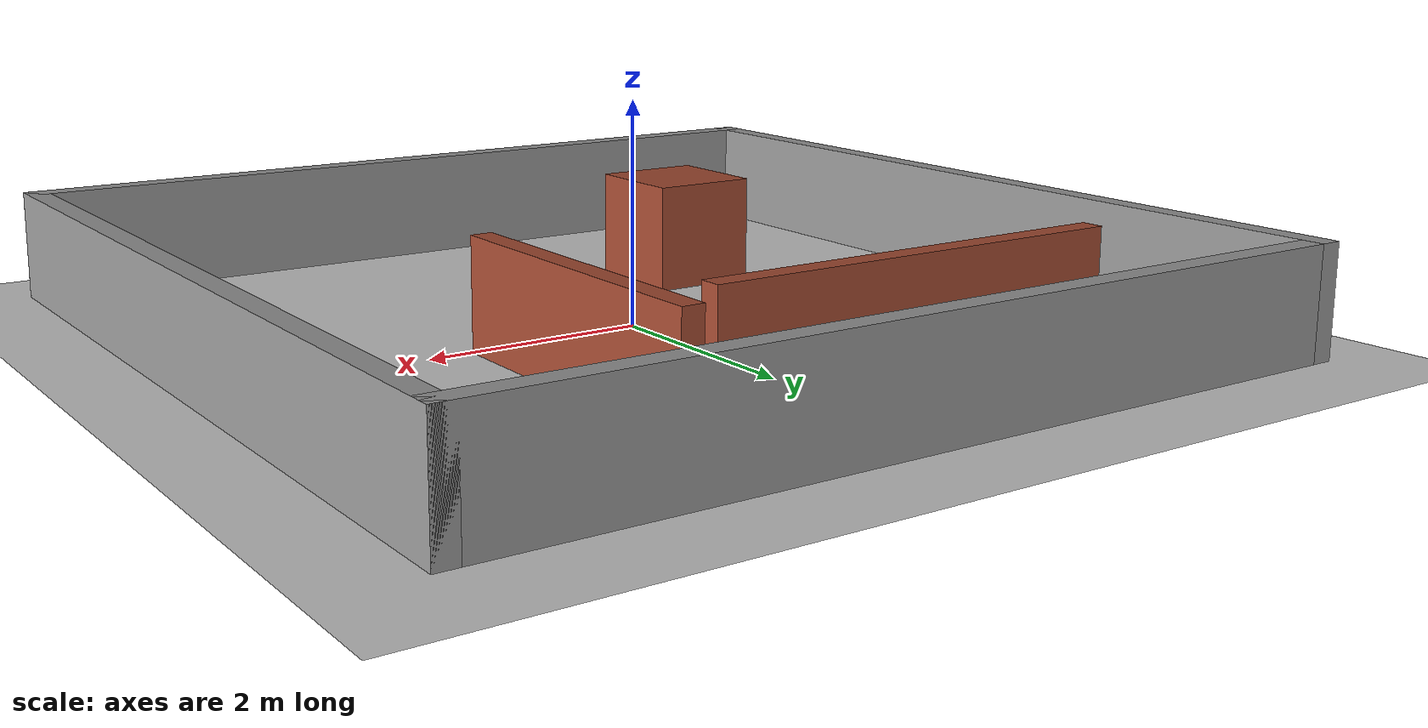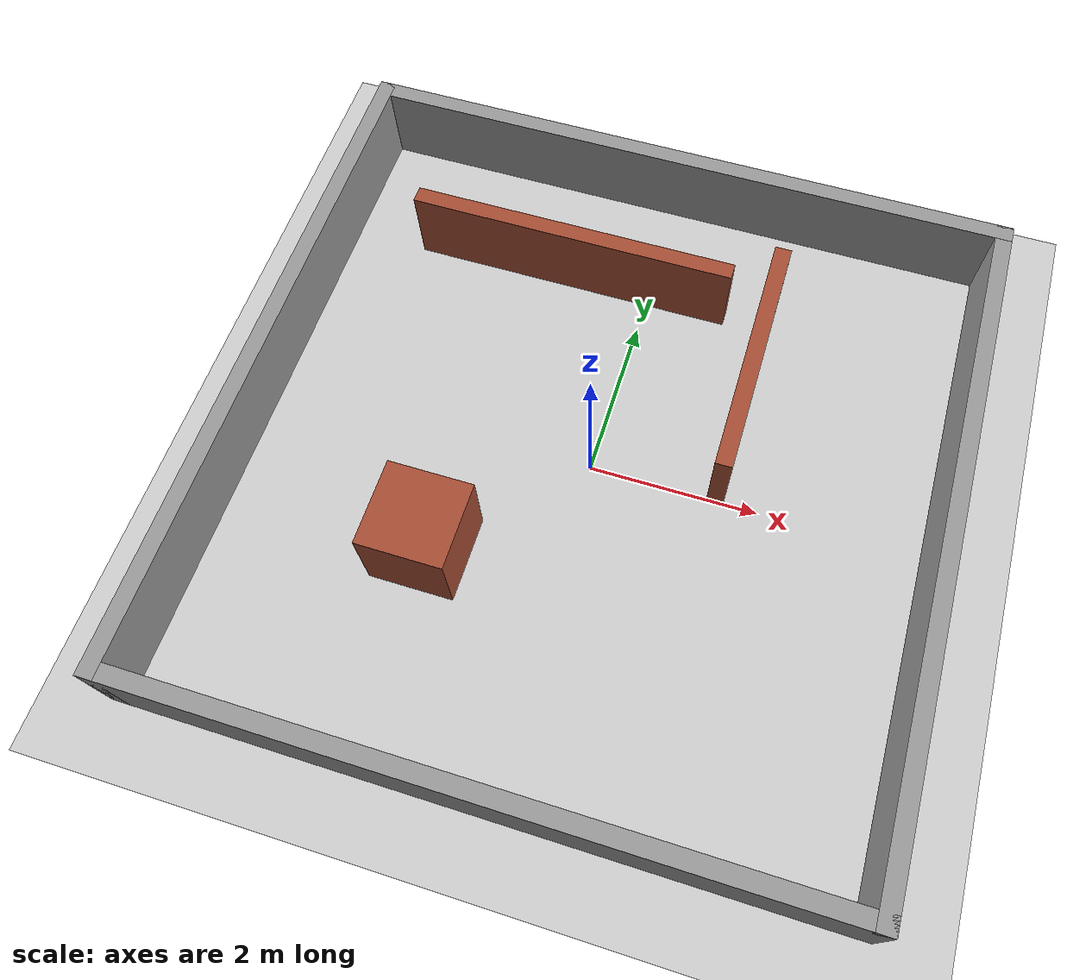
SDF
<?xml version="1.0" ?>
<sdf version="1.6">
  <world name="default">

    <!-- 1. 基础环境 -->
    <include><uri>model://sun</uri></include>
    <include><uri>model://ground_plane</uri></include>

    <!-- 2. 场地围墙 (8m x 8m) -->

    <!-- 北墙 -->
    <model name="wall_north">
      <pose>4.0 0 0.5 0 0 0</pose>
      <static>true</static>
      <link name="link">
        <collision name="c"><geometry><box><size>0.2 8.2 1.0</size></box></geometry></collision>
        <visual name="v"><geometry><box><size>0.2 8.2 1.0</size></box></geometry><material><script><name>Gazebo/Grey</name></script></material></visual>
      </link>
    </model>
    <!-- 南墙 -->
    <model name="wall_south">
      <pose>-4.0 0 0.5 0 0 0</pose>
      <static>true</static>
      <link name="link">
        <collision name="c"><geometry><box><size>0.2 8.2 1.0</size></box></geometry></collision>
        <visual name="v"><geometry><box><size>0.2 8.2 1.0</size></box></geometry><material><script><name>Gazebo/Grey</name></script></material></visual>
      </link>
    </model>
    <!-- 东墙 -->
    <model name="wall_east">
      <pose>0 4.0 0.5 0 0 0</pose>
      <static>true</static>
      <link name="link">
        <collision name="c"><geometry><box><size>8.2 0.2 1.0</size></box></geometry></collision>
        <visual name="v"><geometry><box><size>8.2 0.2 1.0</size></box></geometry><material><script><name>Gazebo/Grey</name></script></material></visual>
      </link>
    </model>
    <!-- 西墙 -->
    <model name="wall_west">
      <pose>0 -4.0 0.5 0 0 0</pose>
      <static>true</static>
      <link name="link">
        <collision name="c"><geometry><box><size>8.2 0.2 1.0</size></box></geometry></collision>
        <visual name="v"><geometry><box><size>8.2 0.2 1.0</size></box></geometry><material><script><name>Gazebo/Grey</name></script></material></visual>
      </link>
    </model>

    <!-- 3. 不规则内部障碍物 (Simulation Obstacles) -->

    <!-- 障碍物 A: 中间的横隔断 -->
    <model name="obs_A">
      <pose>1.5 1.5 0.5 0 0 0</pose>
      <static>true</static>
      <link name="link">
        <collision name="c"><geometry><box><size>0.2 3.0 1.0</size></box></geometry></collision>
        <visual name="v"><geometry><box><size>0.2 3.0 1.0</size></box></geometry><material><script><name>Gazebo/Bricks</name></script></material></visual>
      </link>
    </model>

    <!-- 障碍物 B: 左下角的柱子 -->
    <model name="obs_B">
      <pose>-1.5 -1.5 0.5 0 0 0</pose>
      <static>true</static>
      <link name="link">
        <collision name="c"><geometry><box><size>1.0 1.0 1.0</size></box></geometry></collision>
        <visual name="v"><geometry><box><size>1.0 1.0 1.0</size></box></geometry><material><script><name>Gazebo/Bricks</name></script></material></visual>
      </link>
    </model>

     <!-- 障碍物 C: 长条墙 -->
    <model name="obs_C">
      <pose>-1.0 2.5 0.5 0 0 0</pose>
      <static>true</static>
      <link name="link">
        <collision name="c"><geometry><box><size>4.0 0.2 1.0</size></box></geometry></collision>
        <visual name="v"><geometry><box><size>4.0 0.2 1.0</size></box></geometry><material><script><name>Gazebo/Bricks</name></script></material></visual>
      </link>
    </model>

    <!-- 4. 目标物体 (蓝色方块) -->
    <!-- 尺寸增加到 5cm x 5cm x 5cm -->
    <!-- 位置放在稍微开阔的地方 -->
 <model name='box_r'>
      <link name='link'>
        <inertial>
          <mass>0.0875</mass>
          <inertia>
            <ixx>3.646e-05</ixx>
            <ixy>0</ixy>
            <ixz>0</ixz>
            <iyy>3.646e-05</iyy>
            <iyz>0</iyz>
            <izz>3.646e-05</izz>
          </inertia>
          <pose>0 0 0 0 -0 0</pose>
        </inertial>
        <self_collide>0</self_collide>
        <enable_wind>0</enable_wind>
        <kinematic>0</kinematic>
        <pose>0 0 0 0 -0 0</pose>
        <gravity>1</gravity>
        <visual name='visual'>
          <geometry>
            <box>
              <size>0.05 0.05 0.05</size>
            </box>
          </geometry>
          <material>
            <script>
              <name>Gazebo/Grey</name>
              <uri>file://media/materials/scripts/gazebo.material</uri>
            </script>
            <shader type='pixel'>
              <normal_map>__default__</normal_map>
            </shader>
            <ambient>1 0 0 1</ambient>
            <diffuse>1 0 0 1</diffuse>
            <specular>1 0 0 1</specular>
            <emissive>1 0 0 1</emissive>
          </material>
          <pose>0 0 0 0 -0 0</pose>
          <transparency>0</transparency>
          <cast_shadows>1</cast_shadows>
        </visual>
        <collision name='collision'>
          <laser_retro>0</laser_retro>
          <max_contacts>10</max_contacts>
          <pose>0 0 0 0 -0 0</pose>
          <geometry>
            <box>
              <size>0.05 0.05 0.05</size>
            </box>
          </geometry>
          <surface>
            <friction>
              <ode>
                <mu>1</mu>
                <mu2>1</mu2>
                <fdir1>0 0 0</fdir1>
                <slip1>0</slip1>
                <slip2>0</slip2>
              </ode>
              <torsional>
                <coefficient>1</coefficient>
                <patch_radius>0</patch_radius>
                <surface_radius>0</surface_radius>
                <use_patch_radius>1</use_patch_radius>
                <ode>
                  <slip>0</slip>
                </ode>
              </torsional>
            </friction>
            <bounce>
              <restitution_coefficient>0</restitution_coefficient>
              <threshold>1e+06</threshold>
            </bounce>
            <contact>
              <collide_without_contact>0</collide_without_contact>
              <collide_without_contact_bitmask>1</collide_without_contact_bitmask>
              <collide_bitmask>1</collide_bitmask>
              <ode>
                <soft_cfm>0</soft_cfm>
                <soft_erp>0.2</soft_erp>
                <kp>1e+13</kp>
                <kd>1</kd>
                <max_vel>0.01</max_vel>
                <min_depth>0</min_depth>
              </ode>
              <bullet>
                <split_impulse>1</split_impulse>
                <split_impulse_penetration_threshold>-0.01</split_impulse_penetration_threshold>
                <soft_cfm>0</soft_cfm>
                <soft_erp>0.2</soft_erp>
                <kp>1e+13</kp>
                <kd>1</kd>
              </bullet>
            </contact>
          </surface>
        </collision>
      </link>
      <static>0</static>
      <allow_auto_disable>1</allow_auto_disable>
      <pose>5.6e-05 0.500002 0.025022 4e-06 0.000865 -6e-06</pose>
    </model>

  </world>
</sdf>
